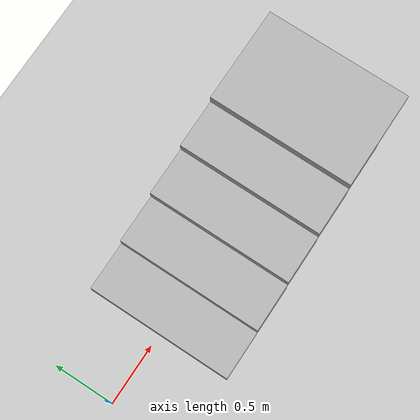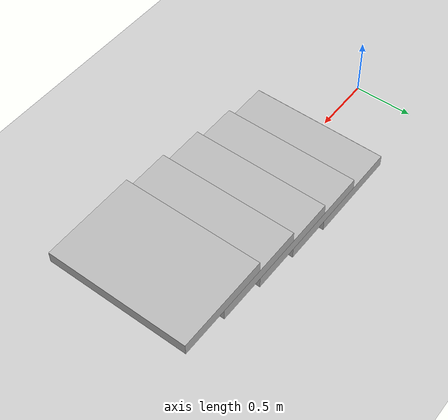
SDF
<sdf version="1.5">
 <world name="default">
  <scene>
   <ambient>0.4 0.4 0.4 1</ambient>
   <background>0.25 0.25 0.25 1</background>
   <shadows>false</shadows>
  </scene>
  <physics type="ode">
   <max_step_size>0.003</max_step_size>
   <real_time_factor>1000</real_time_factor>
   <real_time_update_rate>1000.0</real_time_update_rate>
   <ode>
    <solver><type>quick</type><iters>50</iters><sor>1.4</sor></solver>
    <constraints>
     <cfm>0</cfm>
     <erp>1</erp>
     <contact_max_correcting_vel>0</contact_max_correcting_vel>
     <contact_surface_layer>0</contact_surface_layer>
    </constraints>
   </ode>
  </physics>
  <include><uri>model://ground_plane</uri></include>
  <include><uri>model://sun</uri></include>
  <light type="point" name="point">
   <pose>2 1 3 0 0 0</pose>
   <diffuse>1 1 1 1</diffuse>
   <specular>.1 .1 .1 1</specular>
   <attenuation>
    <range>20</range>
    <linear>0.2</linear>
    <constant>0.8</constant>
    <quadratic>0.01</quadratic>
   </attenuation>
   <cast_shadows>false</cast_shadows>
  </light>
  <light type="point" name="point2">
   <pose>1 1 1.5 0 0 0</pose>
   <diffuse>1 1 1 1</diffuse>
   <specular>.1 .1 .1 1</specular>
   <attenuation>
    <range>20</range>
    <linear>0.2</linear>
    <constant>0.8</constant>
    <quadratic>0.01</quadratic>
   </attenuation>
   <cast_shadows>false</cast_shadows>
  </light>
  <light type="point" name="point3">
   <pose>-1 1 2.0 0 0 0</pose>
   <diffuse>1 1 1 1</diffuse>
   <specular>.1 .1 .1 1</specular>
   <attenuation>
    <range>20</range>
    <linear>0.2</linear>
    <constant>0.8</constant>
    <quadratic>0.01</quadratic>
   </attenuation>
   <cast_shadows>false</cast_shadows>
  </light>
  <model name="guidance_walls">
   <static>true</static>
   <link name="wall_left">
    <pose>2.0 0.25 0.3 1.47 0 0</pose>
    <collision name="collision">
     <geometry><box><size>4.0 0.6 0.01</size></box></geometry>
     <surface><friction><ode><mu>0.0</mu><mu2>0.0</mu2></ode></friction></surface>
    </collision>
   </link>
   <link name="wall_right">
    <pose>2.0 -0.25 0.3 1.67 0 0</pose>
    <collision name="collision">
     <geometry><box><size>4.0 0.6 0.01</size></box></geometry>
     <surface><friction><ode><mu>0.0</mu><mu2>0.0</mu2></ode></friction></surface>
    </collision>
   </link>
  </model>
  <model name="stairs">
   <pose>1.0 0 0.05 0 0 0</pose>
   <static>true</static>
   <link name="step1">
    <collision name="collision"><geometry><box><size>0.8 1.2 0.1</size></box></geometry></collision>
    <visual name="visual">
     <ambient>0.8 0.8 0.8 1</ambient>
     <emissive>0 0 0 1</emissive>
     <geometry><box><size>0.8 1.2 0.1</size></box></geometry>
    </visual>
   </link>
   <link name="step_edge">
    <pose>-0.4 0.0 0.0 1.57 0 1.57</pose>
    <collision name="collision"><geometry><box><size>1.2 0.1 0.001</size></box></geometry></collision>
    <visual name="visual">
     <ambient>0.8 0.8 0.8 1</ambient>
     <emissive>0 0 0 1</emissive>
     <geometry><box><size>1.2 0.1 0.001</size></box></geometry>
    </visual>
   </link>
   <link name="step2">
    <pose>0.4 0 0.1 0 0 0</pose>
    <collision name="collision"><geometry><box><size>0.8 1.2 0.1</size></box></geometry></collision>
    <visual name="visual">
     <ambient>0.8 0.8 0.8 1</ambient>
     <emissive>0 0 0 1</emissive>
     <geometry><box><size>0.8 1.2 0.1</size></box></geometry>
    </visual>
   </link>
   <link name="step3">
    <pose>0.8 0 0.2 0 0 0</pose>
    <collision name="collision"><geometry><box><size>0.8 1.2 0.1</size></box></geometry></collision>
    <visual name="visual">
     <ambient>0.8 0.8 0.8 1</ambient>
     <emissive>0 0 0 1</emissive>
     <geometry><box><size>0.8 1.2 0.1</size></box></geometry>
    </visual>
   </link>
   <link name="step4">
    <pose>1.2 0 0.3 0 0 0</pose>
    <collision name="collision"><geometry><box><size>0.8 1.2 0.1</size></box></geometry></collision>
    <visual name="visual"><geometry><box><size>0.8 1.2 0.1</size></box></geometry></visual>
   </link>
   <link name="step5">
    <pose>1.6 0 0.4 0 0 0</pose>
    <collision name="collision"><geometry><box><size>0.8 1.2 0.1</size></box></geometry></collision>
    <visual name="visual"><geometry><box><size>0.8 1.2 0.1</size></box></geometry></visual>
   </link>
  </model>
 </world>
</sdf>
